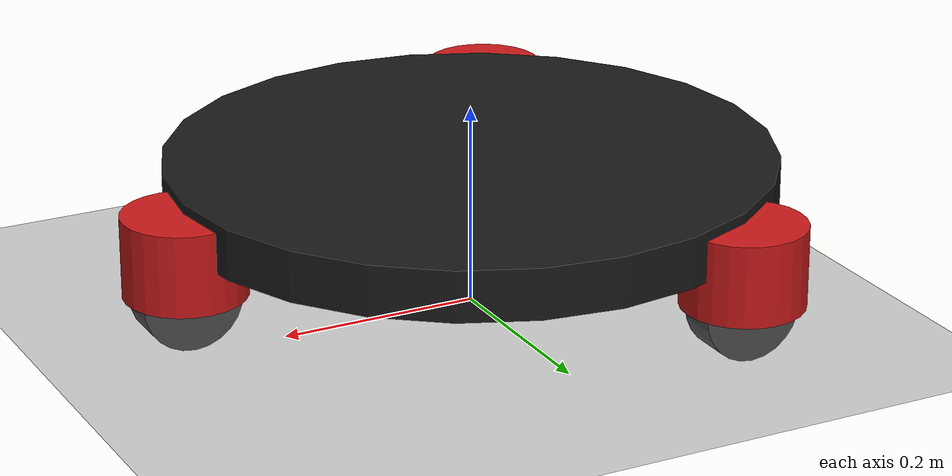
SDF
<?xml version="1.0" ?>
<sdf version="1.9">
  <world name="swerve_world">

    <!-- Physics -->
    <physics name="1ms" type="ode">
      <max_step_size>0.001</max_step_size>
      <real_time_factor>1.0</real_time_factor>
    </physics>

    <!-- Required plugins -->
    <plugin filename="gz-sim-physics-system"
            name="gz::sim::systems::Physics"/>
    <plugin filename="gz-sim-scene-broadcaster-system"
            name="gz::sim::systems::SceneBroadcaster"/>
    <plugin filename="gz-sim-user-commands-system"
            name="gz::sim::systems::UserCommands"/>

    <!-- Lighting -->
    <light name="sun" type="directional">
      <cast_shadows>true</cast_shadows>
      <pose>0 0 10 0 0 0</pose>
      <diffuse>0.8 0.8 0.8 1</diffuse>
      <specular>0.2 0.2 0.2 1</specular>
      <direction>-0.5 0.1 -0.9</direction>
    </light>

    <!-- Ground plane -->
    <model name="ground_plane">
      <static>true</static>
      <link name="link">
        <collision name="collision">
          <geometry><plane><normal>0 0 1</normal></plane></geometry>
          <surface>
            <friction><ode><mu>1</mu><mu2>1</mu2></ode></friction>
          </surface>
        </collision>
        <visual name="visual">
          <geometry><plane><normal>0 0 1</normal><size>100 100</size></plane></geometry>
          <material>
            <ambient>0.8 0.8 0.8 1</ambient>
            <diffuse>0.8 0.8 0.8 1</diffuse>
          </material>
        </visual>
      </link>
    </model>

  <model name="three_wheel_swerve">
    <pose>0 0 0.13 0 0 0</pose>

    <!-- ==================== BASE LINK ==================== -->
    <link name="base_link">
      <inertial>
        <pose>0 0 0 0 0 0</pose>
        <mass>15.0</mass>
        <inertia>
          <ixx>0.3375</ixx> <ixy>0</ixy> <ixz>0</ixz>
          <iyy>0.3375</iyy> <iyz>0</iyz>
          <izz>0.675</izz>
        </inertia>
      </inertial>
      <visual name="chassis_visual">
        <geometry>
          <cylinder>
            <radius>0.3</radius>
            <length>0.05</length>
          </cylinder>
        </geometry>
        <material>
          <ambient>0.1 0.1 0.1 1.0</ambient>
          <diffuse>0.1 0.1 0.1 1.0</diffuse>
        </material>
      </visual>
      <collision name="chassis_collision">
        <geometry>
          <cylinder>
            <radius>0.3</radius>
            <length>0.05</length>
          </cylinder>
        </geometry>
      </collision>
    </link>

    <!-- ==================== MODULE 1 (front, 0 deg) ==================== -->
    <link name="steer_link_1">
      <pose>0.3 0 -0.025 0 0 0</pose>
      <inertial>
        <mass>1.5</mass>
        <inertia>
          <ixx>0.00215</ixx><ixy>0</ixy><ixz>0</ixz>
          <iyy>0.00215</iyy><iyz>0</iyz>
          <izz>0.0027</izz>
        </inertia>
      </inertial>
      <visual name="steer_1_visual">
        <geometry>
          <cylinder><radius>0.06</radius><length>0.08</length></cylinder>
        </geometry>
        <material>
          <ambient>0.8 0.1 0.1 1.0</ambient>
          <diffuse>0.8 0.1 0.1 1.0</diffuse>
        </material>
      </visual>
      <!-- FIX #1: tambah collision di steer_link -->
      <collision name="steer_1_collision">
        <geometry>
          <cylinder><radius>0.06</radius><length>0.08</length></cylinder>
        </geometry>
      </collision>
    </link>

    <link name="wheel_link_1">
      <pose>0.3 0 -0.065 1.5708 0 0</pose>
      <inertial>
        <mass>0.8</mass>
        <inertia>
          <ixx>0.0006</ixx><ixy>0</ixy><ixz>0</ixz>
          <iyy>0.0006</iyy><iyz>0</iyz>
          <izz>0.001</izz>
        </inertia>
      </inertial>
      <visual name="wheel_1_visual">
        <geometry>
          <cylinder><radius>0.05</radius><length>0.04</length></cylinder>
        </geometry>
        <material>
          <ambient>0.3 0.3 0.3 1.0</ambient>
          <diffuse>0.3 0.3 0.3 1.0</diffuse>
        </material>
      </visual>
      <collision name="wheel_1_collision">
        <geometry>
          <cylinder><radius>0.05</radius><length>0.04</length></cylinder>
        </geometry>
        <surface>
          <friction>
            <ode>
              <mu>1.0</mu>
              <mu2>1.0</mu2>
            </ode>
          </friction>
        </surface>
      </collision>
    </link>

    <!-- FIX #2: joint limits + dynamics + expressed_in model frame -->
    <joint name="steer_joint_1" type="revolute">
      <parent>base_link</parent>
      <child>steer_link_1</child>
      <axis>
        <xyz expressed_in="__model__">0 0 1</xyz>
        <limit>
          <lower>-3.14159</lower>
          <upper>3.14159</upper>
          <effort>10.0</effort>
          <velocity>5.0</velocity>
        </limit>
        <dynamics>
          <damping>0.1</damping>
          <friction>0.01</friction>
        </dynamics>
      </axis>
    </joint>

    <!-- FIX #3: wheel axis expressed_in model frame supaya arah putar bener -->
    <joint name="wheel_joint_1" type="revolute">
      <parent>steer_link_1</parent>
      <child>wheel_link_1</child>
      <axis>
        <xyz expressed_in="__model__">0 1 0</xyz>
        <limit>
          <lower>-1e16</lower>
          <upper>1e16</upper>
          <effort>10.0</effort>
          <velocity>20.0</velocity>
        </limit>
        <dynamics>
          <damping>0.05</damping>
          <friction>0.01</friction>
        </dynamics>
      </axis>
    </joint>

    <!-- ==================== MODULE 2 (120 deg) ==================== -->
    <link name="steer_link_2">
      <pose>-0.15 0.2598 -0.025 0 0 0</pose>
      <inertial>
        <mass>1.5</mass>
        <inertia>
          <ixx>0.00215</ixx><ixy>0</ixy><ixz>0</ixz>
          <iyy>0.00215</iyy><iyz>0</iyz>
          <izz>0.0027</izz>
        </inertia>
      </inertial>
      <visual name="steer_2_visual">
        <geometry>
          <cylinder><radius>0.06</radius><length>0.08</length></cylinder>
        </geometry>
        <material>
          <ambient>0.8 0.1 0.1 1.0</ambient>
          <diffuse>0.8 0.1 0.1 1.0</diffuse>
        </material>
      </visual>
      <collision name="steer_2_collision">
        <geometry>
          <cylinder><radius>0.06</radius><length>0.08</length></cylinder>
        </geometry>
      </collision>
    </link>

    <link name="wheel_link_2">
      <pose>-0.15 0.2598 -0.065 1.5708 0 0</pose>
      <inertial>
        <mass>0.8</mass>
        <inertia>
          <ixx>0.0006</ixx><ixy>0</ixy><ixz>0</ixz>
          <iyy>0.0006</iyy><iyz>0</iyz>
          <izz>0.001</izz>
        </inertia>
      </inertial>
      <visual name="wheel_2_visual">
        <geometry>
          <cylinder><radius>0.05</radius><length>0.04</length></cylinder>
        </geometry>
        <material>
          <ambient>0.3 0.3 0.3 1.0</ambient>
          <diffuse>0.3 0.3 0.3 1.0</diffuse>
        </material>
      </visual>
      <collision name="wheel_2_collision">
        <geometry>
          <cylinder><radius>0.05</radius><length>0.04</length></cylinder>
        </geometry>
        <surface>
          <friction>
            <ode>
              <mu>1.0</mu>
              <mu2>1.0</mu2>
            </ode>
          </friction>
        </surface>
      </collision>
    </link>

    <joint name="steer_joint_2" type="revolute">
      <parent>base_link</parent>
      <child>steer_link_2</child>
      <axis>
        <xyz expressed_in="__model__">0 0 1</xyz>
        <limit>
          <lower>-3.14159</lower>
          <upper>3.14159</upper>
          <effort>10.0</effort>
          <velocity>5.0</velocity>
        </limit>
        <dynamics>
          <damping>0.1</damping>
          <friction>0.01</friction>
        </dynamics>
      </axis>
    </joint>

    <joint name="wheel_joint_2" type="revolute">
      <parent>steer_link_2</parent>
      <child>wheel_link_2</child>
      <axis>
        <xyz expressed_in="__model__">0 1 0</xyz>
        <limit>
          <lower>-1e16</lower>
          <upper>1e16</upper>
          <effort>10.0</effort>
          <velocity>20.0</velocity>
        </limit>
        <dynamics>
          <damping>0.05</damping>
          <friction>0.01</friction>
        </dynamics>
      </axis>
    </joint>

    <!-- ==================== MODULE 3 (240 deg) ==================== -->
    <link name="steer_link_3">
      <pose>-0.15 -0.2598 -0.025 0 0 0</pose>
      <inertial>
        <mass>1.5</mass>
        <inertia>
          <ixx>0.00215</ixx><ixy>0</ixy><ixz>0</ixz>
          <iyy>0.00215</iyy><iyz>0</iyz>
          <izz>0.0027</izz>
        </inertia>
      </inertial>
      <visual name="steer_3_visual">
        <geometry>
          <cylinder><radius>0.06</radius><length>0.08</length></cylinder>
        </geometry>
        <material>
          <ambient>0.8 0.1 0.1 1.0</ambient>
          <diffuse>0.8 0.1 0.1 1.0</diffuse>
        </material>
      </visual>
      <collision name="steer_3_collision">
        <geometry>
          <cylinder><radius>0.06</radius><length>0.08</length></cylinder>
        </geometry>
      </collision>
    </link>

    <link name="wheel_link_3">
      <pose>-0.15 -0.2598 -0.065 1.5708 0 0</pose>
      <inertial>
        <mass>0.8</mass>
        <inertia>
          <ixx>0.0006</ixx><ixy>0</ixy><ixz>0</ixz>
          <iyy>0.0006</iyy><iyz>0</iyz>
          <izz>0.001</izz>
        </inertia>
      </inertial>
      <visual name="wheel_3_visual">
        <geometry>
          <cylinder><radius>0.05</radius><length>0.04</length></cylinder>
        </geometry>
        <material>
          <ambient>0.3 0.3 0.3 1.0</ambient>
          <diffuse>0.3 0.3 0.3 1.0</diffuse>
        </material>
      </visual>
      <collision name="wheel_3_collision">
        <geometry>
          <cylinder><radius>0.05</radius><length>0.04</length></cylinder>
        </geometry>
        <surface>
          <friction>
            <ode>
              <mu>1.0</mu>
              <mu2>1.0</mu2>
            </ode>
          </friction>
        </surface>
      </collision>
    </link>

    <joint name="steer_joint_3" type="revolute">
      <parent>base_link</parent>
      <child>steer_link_3</child>
      <axis>
        <xyz expressed_in="__model__">0 0 1</xyz>
        <limit>
          <lower>-3.14159</lower>
          <upper>3.14159</upper>
          <effort>10.0</effort>
          <velocity>5.0</velocity>
        </limit>
        <dynamics>
          <damping>0.1</damping>
          <friction>0.01</friction>
        </dynamics>
      </axis>
    </joint>

    <joint name="wheel_joint_3" type="revolute">
      <parent>steer_link_3</parent>
      <child>wheel_link_3</child>
      <axis>
        <xyz expressed_in="__model__">0 1 0</xyz>
        <limit>
          <lower>-1e16</lower>
          <upper>1e16</upper>
          <effort>10.0</effort>
          <velocity>20.0</velocity>
        </limit>
        <dynamics>
          <damping>0.05</damping>
          <friction>0.01</friction>
        </dynamics>
      </axis>
    </joint>

    <!-- ==================== GAZEBO PLUGINS (direct control) ==================== -->
    <plugin filename="gz-sim-joint-position-controller-system" name="gz::sim::systems::JointPositionController">
      <joint_name>steer_joint_1</joint_name>
      <topic>/model/three_wheel_swerve/joint/steer_joint_1/cmd_pos</topic>
      <p_gain>5</p_gain>
    </plugin>
    <plugin filename="gz-sim-joint-controller-system" name="gz::sim::systems::JointController">
      <joint_name>wheel_joint_1</joint_name>
      <topic>/model/three_wheel_swerve/joint/wheel_joint_1/cmd_vel</topic>
    </plugin>

    <plugin filename="gz-sim-joint-position-controller-system" name="gz::sim::systems::JointPositionController">
      <joint_name>steer_joint_2</joint_name>
      <topic>/model/three_wheel_swerve/joint/steer_joint_2/cmd_pos</topic>
      <p_gain>5</p_gain>
    </plugin>
    <plugin filename="gz-sim-joint-controller-system" name="gz::sim::systems::JointController">
      <joint_name>wheel_joint_2</joint_name>
      <topic>/model/three_wheel_swerve/joint/wheel_joint_2/cmd_vel</topic>
    </plugin>

    <plugin filename="gz-sim-joint-position-controller-system" name="gz::sim::systems::JointPositionController">
      <joint_name>steer_joint_3</joint_name>
      <topic>/model/three_wheel_swerve/joint/steer_joint_3/cmd_pos</topic>
      <p_gain>5</p_gain>
    </plugin>
    <plugin filename="gz-sim-joint-controller-system" name="gz::sim::systems::JointController">
      <joint_name>wheel_joint_3</joint_name>
      <topic>/model/three_wheel_swerve/joint/wheel_joint_3/cmd_vel</topic>
    </plugin>

  </model>

  </world>
</sdf>
